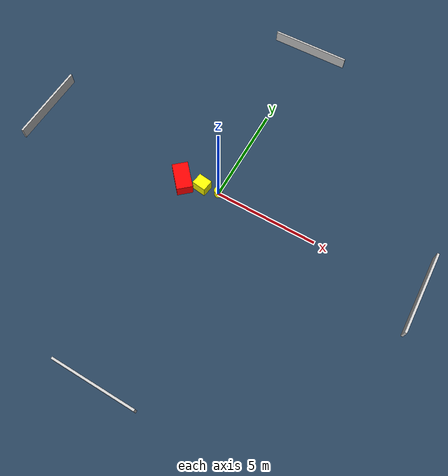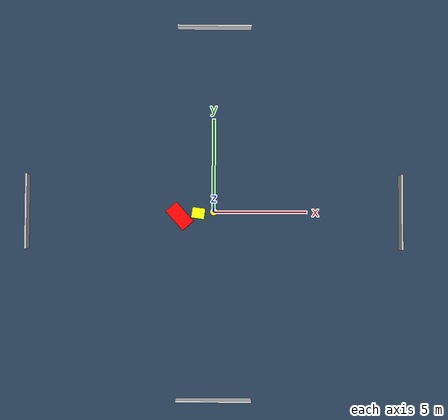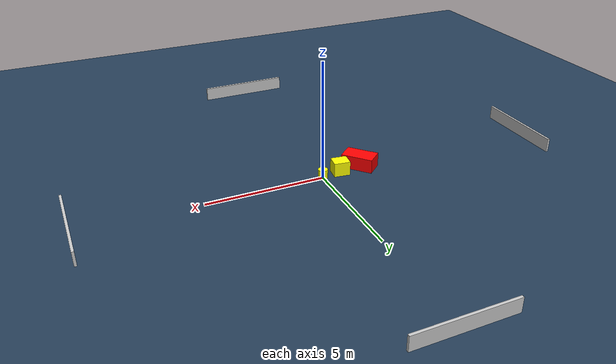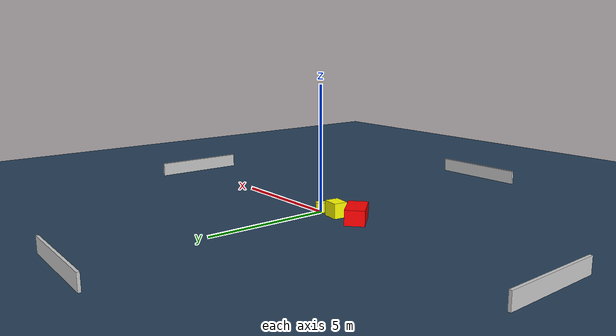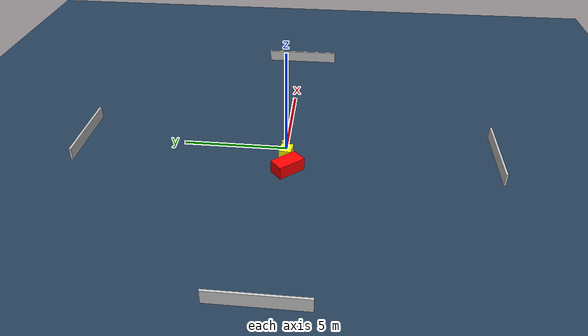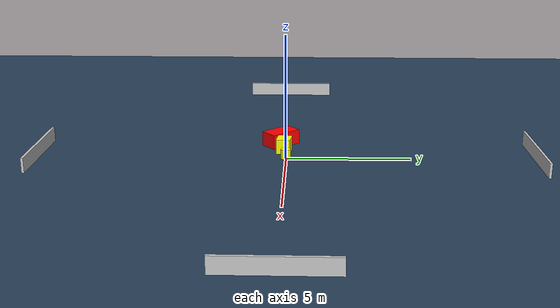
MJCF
<?xml version="1.0" ?>
<mujoco model="generated_environment">
  <option timestep="0.01" integrator="RK4" cone="elliptic"/>
  <default>
    <geom density="1"/>
  </default>
  <asset>
    <texture builtin="gradient" height="3072" name="skybox" rgb1="0.3 0.5 0.7" rgb2="0 0 0" type="skybox" width="512"/>
    <texture builtin="checker" height="300" name="groundplane" rgb1="0.2 0.3 0.4" rgb2="0.1 0.2 0.3" type="2d" width="300"/>
    <material name="groundplane" reflectance="0.2" texrepeat="5 5" texture="groundplane"/>
  </asset>
  <worldbody>
    <light dir="0 0 -1" directional="true" pos="0 0 1.5"/>
    <geom condim="3" friction="0.5 0.005 0.001" material="groundplane" name="floor" pos="0 0 0" size="0 0 0.05" type="plane"/>
    <body name="walls">
      <geom name="wall_1" condim="4" pos="-10.0 0.0 0.3" rgba="0.800000011920929 0.800000011920929 0.800000011920929 1.0" size="0.05 2.0 0.3" type="box"/>
      <geom name="wall_2" condim="4" pos="10.0 0.0 0.3" rgba="0.800000011920929 0.800000011920929 0.800000011920929 1.0" size="0.05 2.0 0.3" type="box"/>
      <geom name="wall_3" condim="4" pos="0.0 -10.0 0.3" rgba="0.800000011920929 0.800000011920929 0.800000011920929 1.0" size="2.0 0.05 0.3" type="box"/>
      <geom name="wall_4" condim="4" pos="0.0 10.0 0.3" rgba="0.800000011920929 0.800000011920929 0.800000011920929 1.0" size="2.0 0.05 0.3" type="box"/>
    </body>
    <body name="robot">
      <joint name="joint_x" type="slide" pos="0 0 0" axis="1 0 0"/>
      <joint name="joint_y" type="slide" pos="0 0 0" axis="0 1 0"/>
      <geom name="robot" type="cylinder" pos="0.0 0.0 0.2" size="0.2 0.2 0.0" mass="5.0" friction="1.0 0.005 0.0001" condim="4" rgba="1.0 1.0 0.0 1.0"/>
    </body>
    <body name="obstacle_1_movable">
      <geom name="obstacle_1_movable" condim="4" pos="-0.8289600090991042 -0.08408014888348948 0.3" euler="0 0 82.25621378144925" friction="0.0 0.005 0.001" rgba="1.0 1.0 0.0 1.0" size="0.28442119089980394 0.3427286598027748 0.3" type="box" mass="0.1"/>
      <joint type="free"/>
    </body>
    <body name="obstacle_2_static">
      <geom name="obstacle_2_static" condim="4" pos="-1.8217333187379938 -0.25146979510928813 0.3" euler="0 0 131.38699338409828" friction="0.0 0.005 0.001" rgba="1.0 0.0 0.0 1.0" size="0.6798301807075968 0.38584337571191707 0.3" type="box"/>
    </body>
  </worldbody>
  <actuator>
    <motor name="actuator_x" joint="joint_x" gear="1" ctrlrange="-1 1"/>
    <motor name="actuator_y" joint="joint_y" gear="1" ctrlrange="-1 1"/>
  </actuator>
</mujoco>
